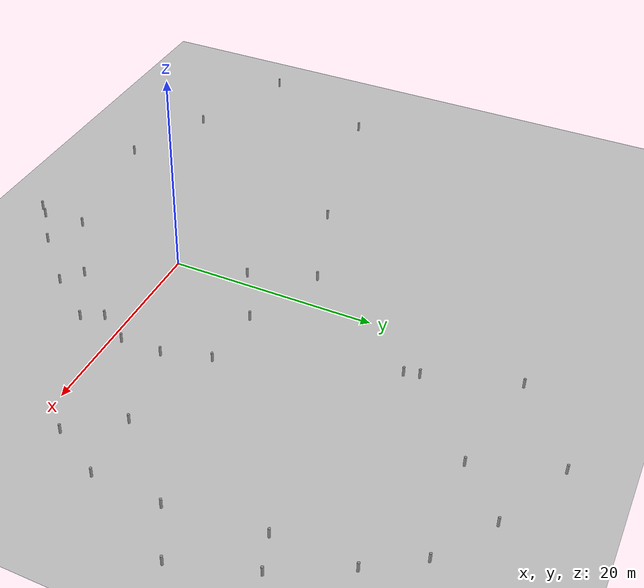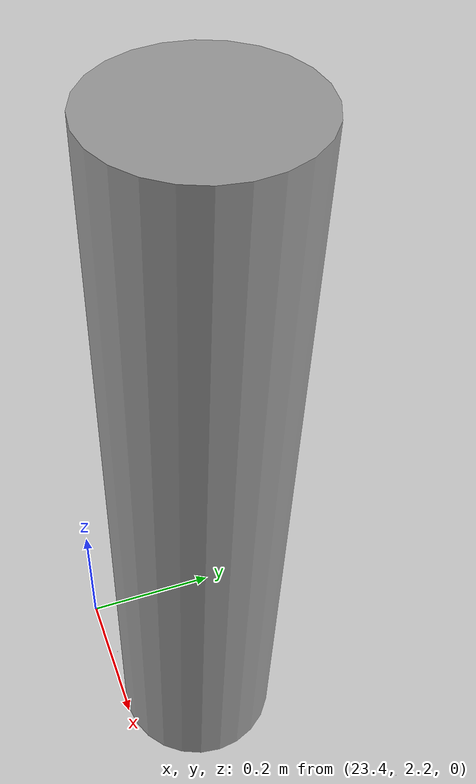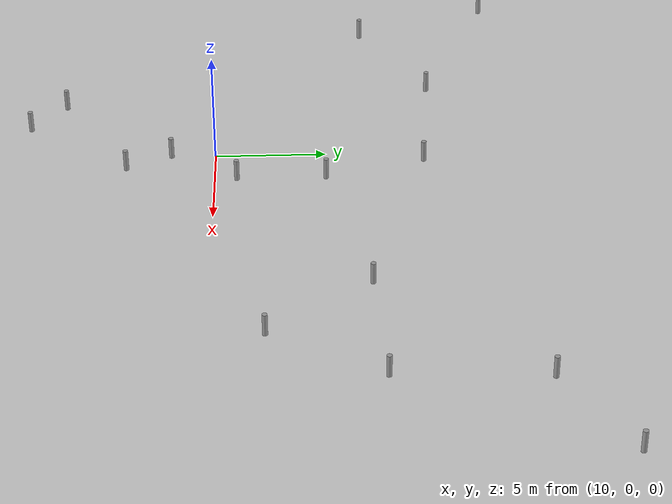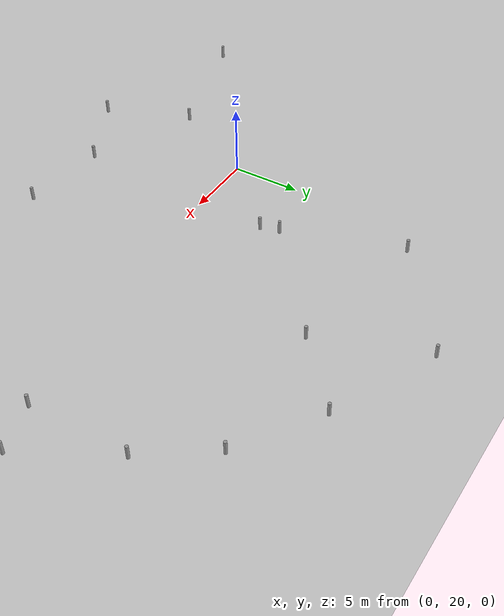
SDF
<sdf version="1.6">
 <world name="default">
  <light name="sun" type="directional">
   <pose>0 0 10 0 -0 0</pose>
   <diffuse>0.8 0.8 0.8 1</diffuse>
   <specular>0.2 0.2 0.2 1</specular>
   <attenuation>
    <range>1000</range>
    <constant>0.9</constant>
    <linear>0.01</linear>
    <quadratic>0.001</quadratic>
   </attenuation>
   <direction>-0.5 0.1 -0.9</direction>
  </light>
  <model name="ground_plane">
   <static>1</static>
   <link name="link">
    <collision name="collision">
     <geometry><plane><normal>0 0 1</normal><size>100 100</size></plane></geometry>
     <surface>
      <contact><collide_bitmask>65535</collide_bitmask></contact>
      <friction><ode><mu>100</mu><mu2>50</mu2></ode></friction>
     </surface>
    </collision>
    <visual name="visual">
     <cast_shadows>0</cast_shadows>
     <geometry><plane><normal>0 0 1</normal><size>100 100</size></plane></geometry>
     <material>
      <script><uri>file://media/materials/scripts/gazebo.material</uri><name>Gazebo/Grey</name></script>
     </material>
    </visual>
   </link>
  </model>
  <gravity>0 0 -9.8</gravity>
  <magnetic_field>6e-06 2.3e-05 -4.2e-05</magnetic_field>
  <atmosphere type="adiabatic"/>
  <physics name="default_physics" default="0" type="ode">
   <max_step_size>0.001</max_step_size>
   <real_time_factor>1</real_time_factor>
   <real_time_update_rate>1000</real_time_update_rate>
  </physics>
  <scene><ambient>0.4 0.4 0.4 1</ambient><background>0.7 0.7 0.7 1</background><shadows>1</shadows></scene>
  <spherical_coordinates>
   <surface_model>EARTH_WGS84</surface_model>
   <latitude_deg>0</latitude_deg>
   <longitude_deg>0</longitude_deg>
   <elevation>0</elevation>
   <heading_deg>0</heading_deg>
  </spherical_coordinates>
  <model name="unit_cylinder_clone_0">
   <pose>-3.60423 13.1594 0.49999 -0 -0 -3.4e-05</pose>
   <link name="link">
    <inertial>
     <mass>1</mass>
     <inertia><ixx>0.145833</ixx><ixy>0</ixy><ixz>0</ixz><iyy>0.145833</iyy><iyz>0</iyz><izz>0.125</izz></inertia>
    </inertial>
    <collision name="collision">
     <geometry><cylinder><radius>0.113809</radius><length>1</length></cylinder></geometry>
    </collision>
    <visual name="visual">
     <geometry><cylinder><radius>0.113809</radius><length>1</length></cylinder></geometry>
     <material>
      <script><name>Gazebo/Grey</name><uri>file://media/materials/scripts/gazebo.material</uri></script>
     </material>
    </visual>
   </link>
  </model>
  <model name="unit_cylinder_clone_1">
   <pose>1.95857 34.8807 0.49999 0 -0 -3.3e-05</pose>
   <link name="link">
    <inertial>
     <mass>1</mass>
     <inertia><ixx>0.145833</ixx><ixy>0</ixy><ixz>0</ixz><iyy>0.145833</iyy><iyz>0</iyz><izz>0.125</izz></inertia>
    </inertial>
    <collision name="collision">
     <geometry><cylinder><radius>0.113809</radius><length>1</length></cylinder></geometry>
    </collision>
    <visual name="visual">
     <geometry><cylinder><radius>0.113809</radius><length>1</length></cylinder></geometry>
     <material>
      <script><name>Gazebo/Grey</name><uri>file://media/materials/scripts/gazebo.material</uri></script>
     </material>
    </visual>
   </link>
  </model>
  <model name="unit_cylinder_clone_2">
   <pose>5.07254 25.1293 0.5 0 0 -3.1e-05</pose>
   <link name="link">
    <inertial>
     <mass>1</mass>
     <inertia><ixx>0.145833</ixx><ixy>0</ixy><ixz>0</ixz><iyy>0.145833</iyy><iyz>0</iyz><izz>0.125</izz></inertia>
    </inertial>
    <collision name="collision">
     <geometry><cylinder><radius>0.113809</radius><length>1</length></cylinder></geometry>
    </collision>
    <visual name="visual">
     <geometry><cylinder><radius>0.113809</radius><length>1</length></cylinder></geometry>
     <material>
      <script><name>Gazebo/Grey</name><uri>file://media/materials/scripts/gazebo.material</uri></script>
     </material>
    </visual>
   </link>
  </model>
  <model name="unit_cylinder_clone_3">
   <pose>4.72556 26.4911 0.49999 -0 -0 -2.9e-05</pose>
   <link name="link">
    <inertial>
     <mass>1</mass>
     <inertia><ixx>0.145833</ixx><ixy>0</ixy><ixz>0</ixz><iyy>0.145833</iyy><iyz>0</iyz><izz>0.125</izz></inertia>
    </inertial>
    <collision name="collision">
     <geometry><cylinder><radius>0.113809</radius><length>1</length></cylinder></geometry>
    </collision>
    <visual name="visual">
     <geometry><cylinder><radius>0.113809</radius><length>1</length></cylinder></geometry>
     <material>
      <script><name>Gazebo/Grey</name><uri>file://media/materials/scripts/gazebo.material</uri></script>
     </material>
    </visual>
   </link>
  </model>
  <model name="unit_cylinder_clone_4">
   <pose>9.83471 40.6109 0.5 0 0 -2.9e-05</pose>
   <link name="link">
    <inertial>
     <mass>1</mass>
     <inertia><ixx>0.145833</ixx><ixy>0</ixy><ixz>0</ixz><iyy>0.145833</iyy><iyz>0</iyz><izz>0.125</izz></inertia>
    </inertial>
    <collision name="collision">
     <geometry><cylinder><radius>0.113809</radius><length>1</length></cylinder></geometry>
    </collision>
    <visual name="visual">
     <geometry><cylinder><radius>0.113809</radius><length>1</length></cylinder></geometry>
     <material>
      <script><name>Gazebo/Grey</name><uri>file://media/materials/scripts/gazebo.material</uri></script>
     </material>
    </visual>
   </link>
  </model>
  <model name="unit_cylinder_clone_5">
   <pose>17.1804 37.2787 0.49999 -0 -0 -2.9e-05</pose>
   <link name="link">
    <inertial>
     <mass>1</mass>
     <inertia><ixx>0.145833</ixx><ixy>0</ixy><ixz>0</ixz><iyy>0.145833</iyy><iyz>0</iyz><izz>0.125</izz></inertia>
    </inertial>
    <collision name="collision">
     <geometry><cylinder><radius>0.113809</radius><length>1</length></cylinder></geometry>
    </collision>
    <visual name="visual">
     <geometry><cylinder><radius>0.113809</radius><length>1</length></cylinder></geometry>
     <material>
      <script><name>Gazebo/Grey</name><uri>file://media/materials/scripts/gazebo.material</uri></script>
     </material>
    </visual>
   </link>
  </model>
  <model name="unit_cylinder_clone_6">
   <pose>22.5185 33.757 0.49999 0 -0 -3e-05</pose>
   <link name="link">
    <inertial>
     <mass>1</mass>
     <inertia><ixx>0.145833</ixx><ixy>0</ixy><ixz>0</ixz><iyy>0.145833</iyy><iyz>0</iyz><izz>0.125</izz></inertia>
    </inertial>
    <collision name="collision">
     <geometry><cylinder><radius>0.113809</radius><length>1</length></cylinder></geometry>
    </collision>
    <visual name="visual">
     <geometry><cylinder><radius>0.113809</radius><length>1</length></cylinder></geometry>
     <material>
      <script><name>Gazebo/Grey</name><uri>file://media/materials/scripts/gazebo.material</uri></script>
     </material>
    </visual>
   </link>
  </model>
  <model name="unit_cylinder_clone_7">
   <pose>25.555 29.3647 0.49999 -0 -0 -2.9e-05</pose>
   <link name="link">
    <inertial>
     <mass>1</mass>
     <inertia><ixx>0.145833</ixx><ixy>0</ixy><ixz>0</ixz><iyy>0.145833</iyy><iyz>0</iyz><izz>0.125</izz></inertia>
    </inertial>
    <collision name="collision">
     <geometry><cylinder><radius>0.113809</radius><length>1</length></cylinder></geometry>
    </collision>
    <visual name="visual">
     <geometry><cylinder><radius>0.113809</radius><length>1</length></cylinder></geometry>
     <material>
      <script><name>Gazebo/Grey</name><uri>file://media/materials/scripts/gazebo.material</uri></script>
     </material>
    </visual>
   </link>
  </model>
  <model name="unit_cylinder_clone_8">
   <pose>12.5796 33.1064 0.5 0 0 -2.9e-05</pose>
   <link name="link">
    <inertial>
     <mass>1</mass>
     <inertia><ixx>0.145833</ixx><ixy>0</ixy><ixz>0</ixz><iyy>0.145833</iyy><iyz>0</iyz><izz>0.125</izz></inertia>
    </inertial>
    <collision name="collision">
     <geometry><cylinder><radius>0.113809</radius><length>1</length></cylinder></geometry>
    </collision>
    <visual name="visual">
     <geometry><cylinder><radius>0.113809</radius><length>1</length></cylinder></geometry>
     <material>
      <script><name>Gazebo/Grey</name><uri>file://media/materials/scripts/gazebo.material</uri></script>
     </material>
    </visual>
   </link>
  </model>
  <model name="unit_cylinder_clone_9">
   <pose>25.6091 22.2573 0.49999 -0 -0 -3e-05</pose>
   <link name="link">
    <inertial>
     <mass>1</mass>
     <inertia><ixx>0.145833</ixx><ixy>0</ixy><ixz>0</ixz><iyy>0.145833</iyy><iyz>0</iyz><izz>0.125</izz></inertia>
    </inertial>
    <collision name="collision">
     <geometry><cylinder><radius>0.113809</radius><length>1</length></cylinder></geometry>
    </collision>
    <visual name="visual">
     <geometry><cylinder><radius>0.113809</radius><length>1</length></cylinder></geometry>
     <material>
      <script><name>Gazebo/Grey</name><uri>file://media/materials/scripts/gazebo.material</uri></script>
     </material>
    </visual>
   </link>
  </model>
  <model name="unit_cylinder_clone_10">
   <pose>28.9018 23.2903 0.5 0 0 -2.9e-05</pose>
   <link name="link">
    <inertial>
     <mass>1</mass>
     <inertia><ixx>0.145833</ixx><ixy>0</ixy><ixz>0</ixz><iyy>0.145833</iyy><iyz>0</iyz><izz>0.125</izz></inertia>
    </inertial>
    <collision name="collision">
     <geometry><cylinder><radius>0.113809</radius><length>1</length></cylinder></geometry>
    </collision>
    <visual name="visual">
     <geometry><cylinder><radius>0.113809</radius><length>1</length></cylinder></geometry>
     <material>
      <script><name>Gazebo/Grey</name><uri>file://media/materials/scripts/gazebo.material</uri></script>
     </material>
    </visual>
   </link>
  </model>
  <model name="unit_cylinder_clone_11">
   <pose>31.2426 16.3248 0.5 0 0 -3e-05</pose>
   <link name="link">
    <inertial>
     <mass>1</mass>
     <inertia><ixx>0.145833</ixx><ixy>0</ixy><ixz>0</ixz><iyy>0.145833</iyy><iyz>0</iyz><izz>0.125</izz></inertia>
    </inertial>
    <collision name="collision">
     <geometry><cylinder><radius>0.113809</radius><length>1</length></cylinder></geometry>
    </collision>
    <visual name="visual">
     <geometry><cylinder><radius>0.113809</radius><length>1</length></cylinder></geometry>
     <material>
      <script><name>Gazebo/Grey</name><uri>file://media/materials/scripts/gazebo.material</uri></script>
     </material>
    </visual>
   </link>
  </model>
  <model name="unit_cylinder_clone_12">
   <pose>26.411 7.14705 0.49999 -0 -0 -2.9e-05</pose>
   <link name="link">
    <inertial>
     <mass>1</mass>
     <inertia><ixx>0.145833</ixx><ixy>0</ixy><ixz>0</ixz><iyy>0.145833</iyy><iyz>0</iyz><izz>0.125</izz></inertia>
    </inertial>
    <collision name="collision">
     <geometry><cylinder><radius>0.113809</radius><length>1</length></cylinder></geometry>
    </collision>
    <visual name="visual">
     <geometry><cylinder><radius>0.113809</radius><length>1</length></cylinder></geometry>
     <material>
      <script><name>Gazebo/Grey</name><uri>file://media/materials/scripts/gazebo.material</uri></script>
     </material>
    </visual>
   </link>
  </model>
  <model name="unit_cylinder_clone_13">
   <pose>23.5943 2.31459 0.5 0 0 -2.9e-05</pose>
   <link name="link">
    <inertial>
     <mass>1</mass>
     <inertia><ixx>0.145833</ixx><ixy>0</ixy><ixz>0</ixz><iyy>0.145833</iyy><iyz>0</iyz><izz>0.125</izz></inertia>
    </inertial>
    <collision name="collision">
     <geometry><cylinder><radius>0.113809</radius><length>1</length></cylinder></geometry>
    </collision>
    <visual name="visual">
     <geometry><cylinder><radius>0.113809</radius><length>1</length></cylinder></geometry>
     <material>
      <script><name>Gazebo/Grey</name><uri>file://media/materials/scripts/gazebo.material</uri></script>
     </material>
    </visual>
   </link>
  </model>
  <model name="unit_cylinder_clone_14">
   <pose>20.1824 6.78539 0.49999 -0 -0 -3e-05</pose>
   <link name="link">
    <inertial>
     <mass>1</mass>
     <inertia><ixx>0.145833</ixx><ixy>0</ixy><ixz>0</ixz><iyy>0.145833</iyy><iyz>0</iyz><izz>0.125</izz></inertia>
    </inertial>
    <collision name="collision">
     <geometry><cylinder><radius>0.113809</radius><length>1</length></cylinder></geometry>
    </collision>
    <visual name="visual">
     <geometry><cylinder><radius>0.113809</radius><length>1</length></cylinder></geometry>
     <material>
      <script><name>Gazebo/Grey</name><uri>file://media/materials/scripts/gazebo.material</uri></script>
     </material>
    </visual>
   </link>
  </model>
  <model name="unit_cylinder_clone_15">
   <pose>10.6662 9.46133 0.49999 -0 -0 -2.9e-05</pose>
   <link name="link">
    <inertial>
     <mass>1</mass>
     <inertia><ixx>0.145833</ixx><ixy>0</ixy><ixz>0</ixz><iyy>0.145833</iyy><iyz>0</iyz><izz>0.125</izz></inertia>
    </inertial>
    <collision name="collision">
     <geometry><cylinder><radius>0.113809</radius><length>1</length></cylinder></geometry>
    </collision>
    <visual name="visual">
     <geometry><cylinder><radius>0.113809</radius><length>1</length></cylinder></geometry>
     <material>
      <script><name>Gazebo/Grey</name><uri>file://media/materials/scripts/gazebo.material</uri></script>
     </material>
    </visual>
   </link>
  </model>
  <model name="unit_cylinder_clone_16">
   <pose>4.33271 9.95826 0.49999 -0 -0 -2.9e-05</pose>
   <link name="link">
    <inertial>
     <mass>1</mass>
     <inertia><ixx>0.145833</ixx><ixy>0</ixy><ixz>0</ixz><iyy>0.145833</iyy><iyz>0</iyz><izz>0.125</izz></inertia>
    </inertial>
    <collision name="collision">
     <geometry><cylinder><radius>0.113809</radius><length>1</length></cylinder></geometry>
    </collision>
    <visual name="visual">
     <geometry><cylinder><radius>0.113809</radius><length>1</length></cylinder></geometry>
     <material>
      <script><name>Gazebo/Grey</name><uri>file://media/materials/scripts/gazebo.material</uri></script>
     </material>
    </visual>
   </link>
  </model>
  <model name="unit_cylinder_clone_17">
   <pose>12 5 0.49999 0 -0 -2.9e-05</pose>
   <link name="link">
    <inertial>
     <mass>1</mass>
     <inertia><ixx>0.145833</ixx><ixy>0</ixy><ixz>0</ixz><iyy>0.145833</iyy><iyz>0</iyz><izz>0.125</izz></inertia>
    </inertial>
    <collision name="collision">
     <geometry><cylinder><radius>0.113809</radius><length>1</length></cylinder></geometry>
    </collision>
    <visual name="visual">
     <geometry><cylinder><radius>0.113809</radius><length>1</length></cylinder></geometry>
     <material>
      <script><name>Gazebo/Grey</name><uri>file://media/materials/scripts/gazebo.material</uri></script>
     </material>
    </visual>
   </link>
  </model>
  <model name="unit_cylinder_clone_18">
   <pose>26.707 13.6193 0.49999 0 -0 -2.9e-05</pose>
   <link name="link">
    <inertial>
     <mass>1</mass>
     <inertia><ixx>0.145833</ixx><ixy>0</ixy><ixz>0</ixz><iyy>0.145833</iyy><iyz>0</iyz><izz>0.125</izz></inertia>
    </inertial>
    <collision name="collision">
     <geometry><cylinder><radius>0.113809</radius><length>1</length></cylinder></geometry>
    </collision>
    <visual name="visual">
     <geometry><cylinder><radius>0.113809</radius><length>1</length></cylinder></geometry>
     <material>
      <script><name>Gazebo/Grey</name><uri>file://media/materials/scripts/gazebo.material</uri></script>
     </material>
    </visual>
   </link>
  </model>
  <model name="unit_cylinder_clone_19">
   <pose>-1.1475 6.93721 0.5 0 0 -3e-05</pose>
   <link name="link">
    <inertial>
     <mass>1</mass>
     <inertia><ixx>0.145833</ixx><ixy>0</ixy><ixz>0</ixz><iyy>0.145833</iyy><iyz>0</iyz><izz>0.125</izz></inertia>
    </inertial>
    <collision name="collision">
     <geometry><cylinder><radius>0.113809</radius><length>1</length></cylinder></geometry>
    </collision>
    <visual name="visual">
     <geometry><cylinder><radius>0.113809</radius><length>1</length></cylinder></geometry>
     <material>
      <script><name>Gazebo/Grey</name><uri>file://media/materials/scripts/gazebo.material</uri></script>
     </material>
    </visual>
   </link>
  </model>
  <model name="unit_cylinder_clone_20">
   <pose>-13.1435 10.0404 0.49999 0 -0 -3e-05</pose>
   <link name="link">
    <inertial>
     <mass>1</mass>
     <inertia><ixx>0.145833</ixx><ixy>0</ixy><ixz>0</ixz><iyy>0.145833</iyy><iyz>0</iyz><izz>0.125</izz></inertia>
    </inertial>
    <collision name="collision">
     <geometry><cylinder><radius>0.113809</radius><length>1</length></cylinder></geometry>
    </collision>
    <visual name="visual">
     <geometry><cylinder><radius>0.113809</radius><length>1</length></cylinder></geometry>
     <material>
      <script><name>Gazebo/Grey</name><uri>file://media/materials/scripts/gazebo.material</uri></script>
     </material>
    </visual>
   </link>
  </model>
  <model name="unit_cylinder_clone_21">
   <pose>-30.2421 6.41315 0.5 0 0 -2.9e-05</pose>
   <link name="link">
    <inertial>
     <mass>1</mass>
     <inertia><ixx>0.145833</ixx><ixy>0</ixy><ixz>0</ixz><iyy>0.145833</iyy><iyz>0</iyz><izz>0.125</izz></inertia>
    </inertial>
    <collision name="collision">
     <geometry><cylinder><radius>0.113809</radius><length>1</length></cylinder></geometry>
    </collision>
    <visual name="visual">
     <geometry><cylinder><radius>0.113809</radius><length>1</length></cylinder></geometry>
     <material>
      <script><name>Gazebo/Grey</name><uri>file://media/materials/scripts/gazebo.material</uri></script>
     </material>
    </visual>
   </link>
  </model>
  <model name="unit_cylinder_clone_22">
   <pose>-35.3965 -5.99811 0.49999 -0 -0 -3e-05</pose>
   <link name="link">
    <inertial>
     <mass>1</mass>
     <inertia><ixx>0.145833</ixx><ixy>0</ixy><ixz>0</ixz><iyy>0.145833</iyy><iyz>0</iyz><izz>0.125</izz></inertia>
    </inertial>
    <collision name="collision">
     <geometry><cylinder><radius>0.113809</radius><length>1</length></cylinder></geometry>
    </collision>
    <visual name="visual">
     <geometry><cylinder><radius>0.113809</radius><length>1</length></cylinder></geometry>
     <material>
      <script><name>Gazebo/Grey</name><uri>file://media/materials/scripts/gazebo.material</uri></script>
     </material>
    </visual>
   </link>
  </model>
  <model name="unit_cylinder_clone_23">
   <pose>-23.9584 -10.2349 0.49999 0 -0 -3e-05</pose>
   <link name="link">
    <inertial>
     <mass>1</mass>
     <inertia><ixx>0.145833</ixx><ixy>0</ixy><ixz>0</ixz><iyy>0.145833</iyy><iyz>0</iyz><izz>0.125</izz></inertia>
    </inertial>
    <collision name="collision">
     <geometry><cylinder><radius>0.113809</radius><length>1</length></cylinder></geometry>
    </collision>
    <visual name="visual">
     <geometry><cylinder><radius>0.113809</radius><length>1</length></cylinder></geometry>
     <material>
      <script><name>Gazebo/Grey</name><uri>file://media/materials/scripts/gazebo.material</uri></script>
     </material>
    </visual>
   </link>
  </model>
  <model name="unit_cylinder_clone_24">
   <pose>-14.9408 -13.9523 0.5 0 0 -2.9e-05</pose>
   <link name="link">
    <inertial>
     <mass>1</mass>
     <inertia><ixx>0.145833</ixx><ixy>0</ixy><ixz>0</ixz><iyy>0.145833</iyy><iyz>0</iyz><izz>0.125</izz></inertia>
    </inertial>
    <collision name="collision">
     <geometry><cylinder><radius>0.113809</radius><length>1</length></cylinder></geometry>
    </collision>
    <visual name="visual">
     <geometry><cylinder><radius>0.113809</radius><length>1</length></cylinder></geometry>
     <material>
      <script><name>Gazebo/Grey</name><uri>file://media/materials/scripts/gazebo.material</uri></script>
     </material>
    </visual>
   </link>
  </model>
  <model name="unit_cylinder_clone_25">
   <pose>-1.84552 -16.9861 0.49999 0 -0 -2.9e-05</pose>
   <link name="link">
    <inertial>
     <mass>1</mass>
     <inertia><ixx>0.145833</ixx><ixy>0</ixy><ixz>0</ixz><iyy>0.145833</iyy><iyz>0</iyz><izz>0.125</izz></inertia>
    </inertial>
    <collision name="collision">
     <geometry><cylinder><radius>0.113809</radius><length>1</length></cylinder></geometry>
    </collision>
    <visual name="visual">
     <geometry><cylinder><radius>0.113809</radius><length>1</length></cylinder></geometry>
     <material>
      <script><name>Gazebo/Grey</name><uri>file://media/materials/scripts/gazebo.material</uri></script>
     </material>
    </visual>
   </link>
  </model>
  <model name="unit_cylinder_clone_26">
   <pose>-0.869366 -16.006 0.49999 -0 -0 -3e-05</pose>
   <link name="link">
    <inertial>
     <mass>1</mass>
     <inertia><ixx>0.145833</ixx><ixy>0</ixy><ixz>0</ixz><iyy>0.145833</iyy><iyz>0</iyz><izz>0.125</izz></inertia>
    </inertial>
    <collision name="collision">
     <geometry><cylinder><radius>0.113809</radius><length>1</length></cylinder></geometry>
    </collision>
    <visual name="visual">
     <geometry><cylinder><radius>0.113809</radius><length>1</length></cylinder></geometry>
     <material>
      <script><name>Gazebo/Grey</name><uri>file://media/materials/scripts/gazebo.material</uri></script>
     </material>
    </visual>
   </link>
  </model>
  <model name="unit_cylinder_clone_27">
   <pose>2.58451 -13.339 0.5 0 0 -2.9e-05</pose>
   <link name="link">
    <inertial>
     <mass>1</mass>
     <inertia><ixx>0.145833</ixx><ixy>0</ixy><ixz>0</ixz><iyy>0.145833</iyy><iyz>0</iyz><izz>0.125</izz></inertia>
    </inertial>
    <collision name="collision">
     <geometry><cylinder><radius>0.113809</radius><length>1</length></cylinder></geometry>
    </collision>
    <visual name="visual">
     <geometry><cylinder><radius>0.113809</radius><length>1</length></cylinder></geometry>
     <material>
      <script><name>Gazebo/Grey</name><uri>file://media/materials/scripts/gazebo.material</uri></script>
     </material>
    </visual>
   </link>
  </model>
  <model name="unit_cylinder_clone_28">
   <pose>-1.15129 -11.7222 0.49999 -0 -0 -2.9e-05</pose>
   <link name="link">
    <inertial>
     <mass>1</mass>
     <inertia><ixx>0.145833</ixx><ixy>0</ixy><ixz>0</ixz><iyy>0.145833</iyy><iyz>0</iyz><izz>0.125</izz></inertia>
    </inertial>
    <collision name="collision">
     <geometry><cylinder><radius>0.113809</radius><length>1</length></cylinder></geometry>
    </collision>
    <visual name="visual">
     <geometry><cylinder><radius>0.113809</radius><length>1</length></cylinder></geometry>
     <material>
      <script><name>Gazebo/Grey</name><uri>file://media/materials/scripts/gazebo.material</uri></script>
     </material>
    </visual>
   </link>
  </model>
  <model name="unit_cylinder_clone_29">
   <pose>7.44007 -8.62413 0.49999 -0 -0 -3e-05</pose>
   <link name="link">
    <inertial>
     <mass>1</mass>
     <inertia><ixx>0.145833</ixx><ixy>0</ixy><ixz>0</ixz><iyy>0.145833</iyy><iyz>0</iyz><izz>0.125</izz></inertia>
    </inertial>
    <collision name="collision">
     <geometry><cylinder><radius>0.113809</radius><length>1</length></cylinder></geometry>
    </collision>
    <visual name="visual">
     <geometry><cylinder><radius>0.113809</radius><length>1</length></cylinder></geometry>
     <material>
      <script><name>Gazebo/Grey</name><uri>file://media/materials/scripts/gazebo.material</uri></script>
     </material>
    </visual>
   </link>
  </model>
  <model name="unit_cylinder_clone_30">
   <pose>5.50175 -7.12569 0.49999 0 -0 -2.9e-05</pose>
   <link name="link">
    <inertial>
     <mass>1</mass>
     <inertia><ixx>0.145833</ixx><ixy>0</ixy><ixz>0</ixz><iyy>0.145833</iyy><iyz>0</iyz><izz>0.125</izz></inertia>
    </inertial>
    <collision name="collision">
     <geometry><cylinder><radius>0.113809</radius><length>1</length></cylinder></geometry>
    </collision>
    <visual name="visual">
     <geometry><cylinder><radius>0.113809</radius><length>1</length></cylinder></geometry>
     <material>
      <script><name>Gazebo/Grey</name><uri>file://media/materials/scripts/gazebo.material</uri></script>
     </material>
    </visual>
   </link>
  </model>
  <model name="unit_cylinder_clone_31">
   <pose>11 -4 0.5 0 0 -2.9e-05</pose>
   <link name="link">
    <inertial>
     <mass>1</mass>
     <inertia><ixx>0.145833</ixx><ixy>0</ixy><ixz>0</ixz><iyy>0.145833</iyy><iyz>0</iyz><izz>0.125</izz></inertia>
    </inertial>
    <collision name="collision">
     <geometry><cylinder><radius>0.113809</radius><length>1</length></cylinder></geometry>
    </collision>
    <visual name="visual">
     <geometry><cylinder><radius>0.113809</radius><length>1</length></cylinder></geometry>
     <material>
      <script><name>Gazebo/Grey</name><uri>file://media/materials/scripts/gazebo.material</uri></script>
     </material>
    </visual>
   </link>
  </model>
  <model name="unit_cylinder_clone_32">
   <pose>10 -2 0.49999 -0 -0 -3e-05</pose>
   <link name="link">
    <inertial>
     <mass>1</mass>
     <inertia><ixx>0.145833</ixx><ixy>0</ixy><ixz>0</ixz><iyy>0.145833</iyy><iyz>0</iyz><izz>0.125</izz></inertia>
    </inertial>
    <collision name="collision">
     <geometry><cylinder><radius>0.113809</radius><length>1</length></cylinder></geometry>
    </collision>
    <visual name="visual">
     <geometry><cylinder><radius>0.113809</radius><length>1</length></cylinder></geometry>
     <material>
      <script><name>Gazebo/Grey</name><uri>file://media/materials/scripts/gazebo.material</uri></script>
     </material>
    </visual>
   </link>
  </model>
  <model name="unit_cylinder_clone_33">
   <pose>12 1 0.499991 -0 -0 -2.9e-05</pose>
   <link name="link">
    <inertial>
     <mass>1</mass>
     <inertia><ixx>0.145833</ixx><ixy>0</ixy><ixz>0</ixz><iyy>0.145833</iyy><iyz>0</iyz><izz>0.125</izz></inertia>
    </inertial>
    <collision name="collision">
     <geometry><cylinder><radius>0.113809</radius><length>1</length></cylinder></geometry>
    </collision>
    <visual name="visual">
     <geometry><cylinder><radius>0.113809</radius><length>1</length></cylinder></geometry>
     <material>
      <script><name>Gazebo/Grey</name><uri>file://media/materials/scripts/gazebo.material</uri></script>
     </material>
    </visual>
   </link>
  </model>
 </world>
</sdf>
